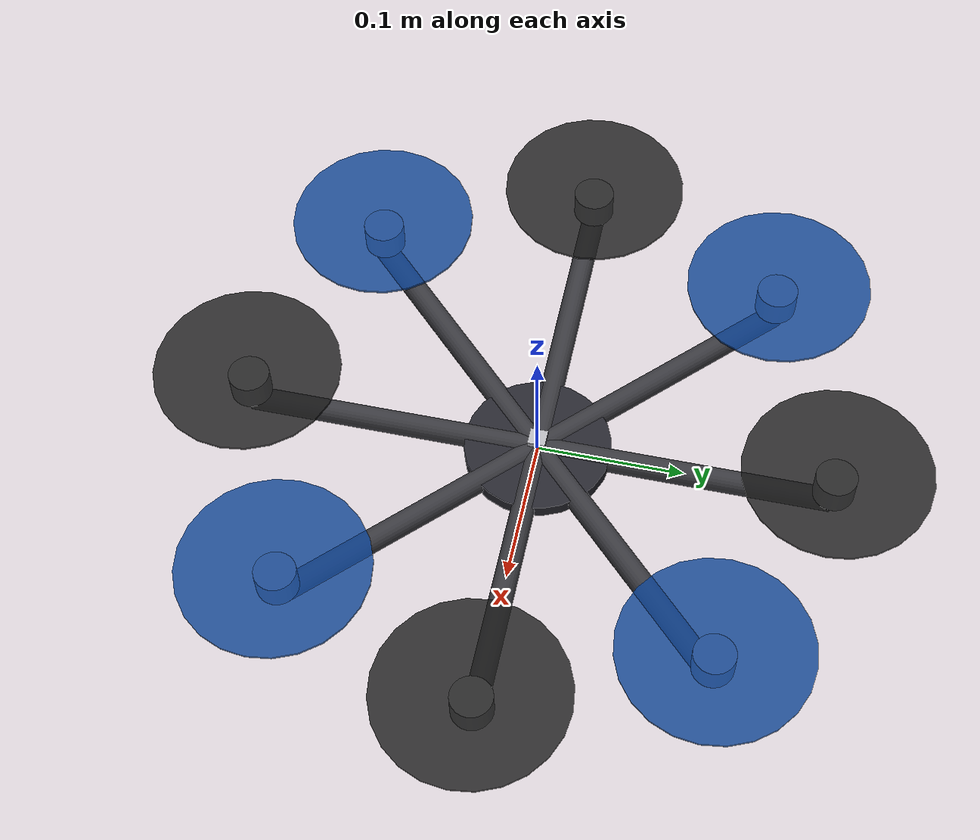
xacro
<?xml version="1.0"?>
<robot name="adaptive_8rotor_drone" xmlns:xacro="http://www.ros.org/wiki/xacro">

  <material name="mat_core"><color rgba="0.15 0.15 0.18 1.0"/></material>
  <material name="mat_arm"><color rgba="0.22 0.22 0.24 1.0"/></material>
  <material name="mat_motor"><color rgba="0.70 0.70 0.72 1.0"/></material>
  <material name="mat_rotor_ccw"><color rgba="0.10 0.10 0.10 0.85"/></material>
  <material name="mat_rotor_cw"><color rgba="0.05 0.25 0.55 0.85"/></material>

  <xacro:macro name="inertial_box" params="mass x y z">
    <inertial><origin xyz="0 0 0" rpy="0 0 0"/><mass value="${mass}"/><inertia ixx="${mass*(y*y + z*z)/12.0}" ixy="0.0" ixz="0.0" iyy="${mass*(x*x + z*z)/12.0}" iyz="0.0" izz="${mass*(x*x + y*y)/12.0}"/></inertial>
  </xacro:macro>
  <xacro:macro name="inertial_cylinder_z" params="mass radius length">
    <inertial><origin xyz="0 0 0" rpy="0 0 0"/><mass value="${mass}"/><inertia ixx="${mass*(3*radius*radius + length*length)/12.0}" ixy="0.0" ixz="0.0" iyy="${mass*(3*radius*radius + length*length)/12.0}" iyz="0.0" izz="${0.5*mass*radius*radius}"/></inertial>
  </xacro:macro>

  <link name="base_link">
    <visual><geometry><cylinder radius="0.050000" length="0.010000"/></geometry><material name="mat_core"/></visual>
    <collision><geometry><cylinder radius="0.050000" length="0.010000"/></geometry></collision>
    <xacro:inertial_cylinder_z mass="0.400000" radius="0.050000" length="0.010000"/>
  </link>

  <link name="imu_link">
    <visual><origin xyz="0 0 0.012" rpy="0 0 0"/><geometry><box size="0.012 0.012 0.004"/></geometry><material name="mat_motor"/></visual>
    <collision><origin xyz="0 0 0.012" rpy="0 0 0"/><geometry><box size="0.012 0.012 0.004"/></geometry></collision>
    <xacro:inertial_box mass="0.005" x="0.012" y="0.012" z="0.004"/>
  </link>
  <joint name="imu_joint" type="fixed"><parent link="base_link"/><child link="imu_link"/><origin xyz="0 0 0" rpy="0 0 0"/></joint>

  <!-- arm_1: spin=ccw, propsize=2.0, pitch=0.045, blades=2 -->
  <link name="arm_1_arm_link">
    <visual><origin xyz="0.100000 0 0" rpy="0 1.57079632679 0"/><geometry><cylinder radius="0.008000" length="0.200000"/></geometry><material name="mat_arm"/></visual>
    <collision><origin xyz="0.100000 0 0" rpy="0 1.57079632679 0"/><geometry><cylinder radius="0.008000" length="0.200000"/></geometry></collision>
    <xacro:inertial_cylinder_z mass="0.036000" radius="0.008000" length="0.200000"/>
  </link>
  <joint name="base_to_arm_1_arm_joint" type="revolute">
    <parent link="base_link"/>
    <child link="arm_1_arm_link"/>
    <origin xyz="0.000000 0.000000 0.000000" rpy="0.000000 0.000000 0.000000"/>
    <axis xyz="0.000000 1.000000 0.000000"/>
    <dynamics damping="0.0800" friction="0.0000"/>
    <limit lower="-0.350000" upper="0.350000" effort="8.0000" velocity="3.0000"/>
  </joint>

  <link name="arm_1_motor_link">
    <visual><geometry><cylinder radius="0.014000" length="0.020000"/></geometry><material name="mat_motor"/></visual>
    <collision><geometry><cylinder radius="0.014000" length="0.020000"/></geometry></collision>
    <xacro:inertial_cylinder_z mass="0.060000" radius="0.014000" length="0.020000"/>
  </link>
  <joint name="arm_1_arm_to_motor_joint" type="revolute">
    <parent link="arm_1_arm_link"/>
    <child link="arm_1_motor_link"/>
    <origin xyz="0.200000 0.000000 0.020000" rpy="0.000000 0.000000 0.000000"/>
    <axis xyz="1.000000 0.000000 0.000000"/>
    <dynamics damping="0.0500" friction="0.0000"/>
    <limit lower="-0.300000" upper="0.300000" effort="6.0000" velocity="3.0000"/>
  </joint>

  <link name="arm_1_rotor_link">
    <visual><origin xyz="0 0 0" rpy="0.000000 0.000000 0.000000"/><geometry><cylinder radius="0.063500" length="0.002000"/></geometry><material name="mat_rotor_ccw"/></visual>
    <collision><origin xyz="0 0 0" rpy="0.000000 0.000000 0.000000"/><geometry><cylinder radius="0.063500" length="0.002000"/></geometry></collision>
    <xacro:inertial_cylinder_z mass="0.010000" radius="0.010000" length="0.006000"/>
  </link>
  <joint name="arm_1_motor_to_rotor_joint" type="continuous">
    <parent link="arm_1_motor_link"/>
    <child link="arm_1_rotor_link"/>
    <origin xyz="0.000000 0.000000 0.016000" rpy="0.000000 0.000000 0.000000"/>
    <axis xyz="0.000000 0.000000 1.000000"/>
    <dynamics damping="0.0010" friction="0.0000"/>
    <limit effort="2.5000" velocity="400.0000"/>
  </joint>

  <!-- arm_2: spin=cw, propsize=2.0, pitch=0.045, blades=2 -->
  <link name="arm_2_arm_link">
    <visual><origin xyz="0.100000 0 0" rpy="0 1.57079632679 0"/><geometry><cylinder radius="0.008000" length="0.200000"/></geometry><material name="mat_arm"/></visual>
    <collision><origin xyz="0.100000 0 0" rpy="0 1.57079632679 0"/><geometry><cylinder radius="0.008000" length="0.200000"/></geometry></collision>
    <xacro:inertial_cylinder_z mass="0.036000" radius="0.008000" length="0.200000"/>
  </link>
  <joint name="base_to_arm_2_arm_joint" type="revolute">
    <parent link="base_link"/>
    <child link="arm_2_arm_link"/>
    <origin xyz="0.000000 0.000000 0.000000" rpy="0.000000 0.000000 0.785398"/>
    <axis xyz="0.000000 1.000000 0.000000"/>
    <dynamics damping="0.0800" friction="0.0000"/>
    <limit lower="-0.350000" upper="0.350000" effort="8.0000" velocity="3.0000"/>
  </joint>

  <link name="arm_2_motor_link">
    <visual><geometry><cylinder radius="0.014000" length="0.020000"/></geometry><material name="mat_motor"/></visual>
    <collision><geometry><cylinder radius="0.014000" length="0.020000"/></geometry></collision>
    <xacro:inertial_cylinder_z mass="0.060000" radius="0.014000" length="0.020000"/>
  </link>
  <joint name="arm_2_arm_to_motor_joint" type="revolute">
    <parent link="arm_2_arm_link"/>
    <child link="arm_2_motor_link"/>
    <origin xyz="0.200000 0.000000 0.020000" rpy="0.000000 0.000000 0.000000"/>
    <axis xyz="1.000000 0.000000 0.000000"/>
    <dynamics damping="0.0500" friction="0.0000"/>
    <limit lower="-0.300000" upper="0.300000" effort="6.0000" velocity="3.0000"/>
  </joint>

  <link name="arm_2_rotor_link">
    <visual><origin xyz="0 0 0" rpy="0.000000 0.000000 0.000000"/><geometry><cylinder radius="0.063500" length="0.002000"/></geometry><material name="mat_rotor_cw"/></visual>
    <collision><origin xyz="0 0 0" rpy="0.000000 0.000000 0.000000"/><geometry><cylinder radius="0.063500" length="0.002000"/></geometry></collision>
    <xacro:inertial_cylinder_z mass="0.010000" radius="0.010000" length="0.006000"/>
  </link>
  <joint name="arm_2_motor_to_rotor_joint" type="continuous">
    <parent link="arm_2_motor_link"/>
    <child link="arm_2_rotor_link"/>
    <origin xyz="0.000000 0.000000 0.016000" rpy="0.000000 0.000000 0.000000"/>
    <axis xyz="0.000000 0.000000 1.000000"/>
    <dynamics damping="0.0010" friction="0.0000"/>
    <limit effort="2.5000" velocity="400.0000"/>
  </joint>

  <!-- arm_3: spin=ccw, propsize=2.0, pitch=0.045, blades=2 -->
  <link name="arm_3_arm_link">
    <visual><origin xyz="0.100000 0 0" rpy="0 1.57079632679 0"/><geometry><cylinder radius="0.008000" length="0.200000"/></geometry><material name="mat_arm"/></visual>
    <collision><origin xyz="0.100000 0 0" rpy="0 1.57079632679 0"/><geometry><cylinder radius="0.008000" length="0.200000"/></geometry></collision>
    <xacro:inertial_cylinder_z mass="0.036000" radius="0.008000" length="0.200000"/>
  </link>
  <joint name="base_to_arm_3_arm_joint" type="revolute">
    <parent link="base_link"/>
    <child link="arm_3_arm_link"/>
    <origin xyz="0.000000 0.000000 0.000000" rpy="0.000000 0.000000 1.570796"/>
    <axis xyz="0.000000 1.000000 0.000000"/>
    <dynamics damping="0.0800" friction="0.0000"/>
    <limit lower="-0.350000" upper="0.350000" effort="8.0000" velocity="3.0000"/>
  </joint>

  <link name="arm_3_motor_link">
    <visual><geometry><cylinder radius="0.014000" length="0.020000"/></geometry><material name="mat_motor"/></visual>
    <collision><geometry><cylinder radius="0.014000" length="0.020000"/></geometry></collision>
    <xacro:inertial_cylinder_z mass="0.060000" radius="0.014000" length="0.020000"/>
  </link>
  <joint name="arm_3_arm_to_motor_joint" type="revolute">
    <parent link="arm_3_arm_link"/>
    <child link="arm_3_motor_link"/>
    <origin xyz="0.200000 0.000000 0.020000" rpy="0.000000 0.000000 0.000000"/>
    <axis xyz="1.000000 0.000000 0.000000"/>
    <dynamics damping="0.0500" friction="0.0000"/>
    <limit lower="-0.300000" upper="0.300000" effort="6.0000" velocity="3.0000"/>
  </joint>

  <link name="arm_3_rotor_link">
    <visual><origin xyz="0 0 0" rpy="0.000000 0.000000 0.000000"/><geometry><cylinder radius="0.063500" length="0.002000"/></geometry><material name="mat_rotor_ccw"/></visual>
    <collision><origin xyz="0 0 0" rpy="0.000000 0.000000 0.000000"/><geometry><cylinder radius="0.063500" length="0.002000"/></geometry></collision>
    <xacro:inertial_cylinder_z mass="0.010000" radius="0.010000" length="0.006000"/>
  </link>
  <joint name="arm_3_motor_to_rotor_joint" type="continuous">
    <parent link="arm_3_motor_link"/>
    <child link="arm_3_rotor_link"/>
    <origin xyz="0.000000 0.000000 0.016000" rpy="0.000000 0.000000 0.000000"/>
    <axis xyz="0.000000 0.000000 1.000000"/>
    <dynamics damping="0.0010" friction="0.0000"/>
    <limit effort="2.5000" velocity="400.0000"/>
  </joint>

  <!-- arm_4: spin=cw, propsize=2.0, pitch=0.045, blades=2 -->
  <link name="arm_4_arm_link">
    <visual><origin xyz="0.100000 0 0" rpy="0 1.57079632679 0"/><geometry><cylinder radius="0.008000" length="0.200000"/></geometry><material name="mat_arm"/></visual>
    <collision><origin xyz="0.100000 0 0" rpy="0 1.57079632679 0"/><geometry><cylinder radius="0.008000" length="0.200000"/></geometry></collision>
    <xacro:inertial_cylinder_z mass="0.036000" radius="0.008000" length="0.200000"/>
  </link>
  <joint name="base_to_arm_4_arm_joint" type="revolute">
    <parent link="base_link"/>
    <child link="arm_4_arm_link"/>
    <origin xyz="0.000000 0.000000 0.000000" rpy="0.000000 0.000000 2.356194"/>
    <axis xyz="0.000000 1.000000 0.000000"/>
    <dynamics damping="0.0800" friction="0.0000"/>
    <limit lower="-0.350000" upper="0.350000" effort="8.0000" velocity="3.0000"/>
  </joint>

  <link name="arm_4_motor_link">
    <visual><geometry><cylinder radius="0.014000" length="0.020000"/></geometry><material name="mat_motor"/></visual>
    <collision><geometry><cylinder radius="0.014000" length="0.020000"/></geometry></collision>
    <xacro:inertial_cylinder_z mass="0.060000" radius="0.014000" length="0.020000"/>
  </link>
  <joint name="arm_4_arm_to_motor_joint" type="revolute">
    <parent link="arm_4_arm_link"/>
    <child link="arm_4_motor_link"/>
    <origin xyz="0.200000 0.000000 0.020000" rpy="0.000000 0.000000 0.000000"/>
    <axis xyz="1.000000 0.000000 0.000000"/>
    <dynamics damping="0.0500" friction="0.0000"/>
    <limit lower="-0.300000" upper="0.300000" effort="6.0000" velocity="3.0000"/>
  </joint>

  <link name="arm_4_rotor_link">
    <visual><origin xyz="0 0 0" rpy="0.000000 0.000000 0.000000"/><geometry><cylinder radius="0.063500" length="0.002000"/></geometry><material name="mat_rotor_cw"/></visual>
    <collision><origin xyz="0 0 0" rpy="0.000000 0.000000 0.000000"/><geometry><cylinder radius="0.063500" length="0.002000"/></geometry></collision>
    <xacro:inertial_cylinder_z mass="0.010000" radius="0.010000" length="0.006000"/>
  </link>
  <joint name="arm_4_motor_to_rotor_joint" type="continuous">
    <parent link="arm_4_motor_link"/>
    <child link="arm_4_rotor_link"/>
    <origin xyz="0.000000 0.000000 0.016000" rpy="0.000000 0.000000 0.000000"/>
    <axis xyz="0.000000 0.000000 1.000000"/>
    <dynamics damping="0.0010" friction="0.0000"/>
    <limit effort="2.5000" velocity="400.0000"/>
  </joint>

  <!-- arm_5: spin=ccw, propsize=2.0, pitch=0.045, blades=2 -->
  <link name="arm_5_arm_link">
    <visual><origin xyz="0.100000 0 0" rpy="0 1.57079632679 0"/><geometry><cylinder radius="0.008000" length="0.200000"/></geometry><material name="mat_arm"/></visual>
    <collision><origin xyz="0.100000 0 0" rpy="0 1.57079632679 0"/><geometry><cylinder radius="0.008000" length="0.200000"/></geometry></collision>
    <xacro:inertial_cylinder_z mass="0.036000" radius="0.008000" length="0.200000"/>
  </link>
  <joint name="base_to_arm_5_arm_joint" type="revolute">
    <parent link="base_link"/>
    <child link="arm_5_arm_link"/>
    <origin xyz="0.000000 0.000000 0.000000" rpy="0.000000 0.000000 3.141593"/>
    <axis xyz="0.000000 1.000000 0.000000"/>
    <dynamics damping="0.0800" friction="0.0000"/>
    <limit lower="-0.350000" upper="0.350000" effort="8.0000" velocity="3.0000"/>
  </joint>

  <link name="arm_5_motor_link">
    <visual><geometry><cylinder radius="0.014000" length="0.020000"/></geometry><material name="mat_motor"/></visual>
    <collision><geometry><cylinder radius="0.014000" length="0.020000"/></geometry></collision>
    <xacro:inertial_cylinder_z mass="0.060000" radius="0.014000" length="0.020000"/>
  </link>
  <joint name="arm_5_arm_to_motor_joint" type="revolute">
    <parent link="arm_5_arm_link"/>
    <child link="arm_5_motor_link"/>
    <origin xyz="0.200000 0.000000 0.020000" rpy="0.000000 0.000000 0.000000"/>
    <axis xyz="1.000000 0.000000 0.000000"/>
    <dynamics damping="0.0500" friction="0.0000"/>
    <limit lower="-0.300000" upper="0.300000" effort="6.0000" velocity="3.0000"/>
  </joint>

  <link name="arm_5_rotor_link">
    <visual><origin xyz="0 0 0" rpy="0.000000 0.000000 0.000000"/><geometry><cylinder radius="0.063500" length="0.002000"/></geometry><material name="mat_rotor_ccw"/></visual>
    <collision><origin xyz="0 0 0" rpy="0.000000 0.000000 0.000000"/><geometry><cylinder radius="0.063500" length="0.002000"/></geometry></collision>
    <xacro:inertial_cylinder_z mass="0.010000" radius="0.010000" length="0.006000"/>
  </link>
  <joint name="arm_5_motor_to_rotor_joint" type="continuous">
    <parent link="arm_5_motor_link"/>
    <child link="arm_5_rotor_link"/>
    <origin xyz="0.000000 0.000000 0.016000" rpy="0.000000 0.000000 0.000000"/>
    <axis xyz="0.000000 0.000000 1.000000"/>
    <dynamics damping="0.0010" friction="0.0000"/>
    <limit effort="2.5000" velocity="400.0000"/>
  </joint>

  <!-- arm_6: spin=cw, propsize=2.0, pitch=0.045, blades=2 -->
  <link name="arm_6_arm_link">
    <visual><origin xyz="0.100000 0 0" rpy="0 1.57079632679 0"/><geometry><cylinder radius="0.008000" length="0.200000"/></geometry><material name="mat_arm"/></visual>
    <collision><origin xyz="0.100000 0 0" rpy="0 1.57079632679 0"/><geometry><cylinder radius="0.008000" length="0.200000"/></geometry></collision>
    <xacro:inertial_cylinder_z mass="0.036000" radius="0.008000" length="0.200000"/>
  </link>
  <joint name="base_to_arm_6_arm_joint" type="revolute">
    <parent link="base_link"/>
    <child link="arm_6_arm_link"/>
    <origin xyz="0.000000 0.000000 0.000000" rpy="0.000000 0.000000 3.926991"/>
    <axis xyz="0.000000 1.000000 0.000000"/>
    <dynamics damping="0.0800" friction="0.0000"/>
    <limit lower="-0.350000" upper="0.350000" effort="8.0000" velocity="3.0000"/>
  </joint>

  <link name="arm_6_motor_link">
    <visual><geometry><cylinder radius="0.014000" length="0.020000"/></geometry><material name="mat_motor"/></visual>
    <collision><geometry><cylinder radius="0.014000" length="0.020000"/></geometry></collision>
    <xacro:inertial_cylinder_z mass="0.060000" radius="0.014000" length="0.020000"/>
  </link>
  <joint name="arm_6_arm_to_motor_joint" type="revolute">
    <parent link="arm_6_arm_link"/>
    <child link="arm_6_motor_link"/>
    <origin xyz="0.200000 0.000000 0.020000" rpy="0.000000 0.000000 0.000000"/>
    <axis xyz="1.000000 0.000000 0.000000"/>
    <dynamics damping="0.0500" friction="0.0000"/>
    <limit lower="-0.300000" upper="0.300000" effort="6.0000" velocity="3.0000"/>
  </joint>

  <link name="arm_6_rotor_link">
    <visual><origin xyz="0 0 0" rpy="0.000000 0.000000 0.000000"/><geometry><cylinder radius="0.063500" length="0.002000"/></geometry><material name="mat_rotor_cw"/></visual>
    <collision><origin xyz="0 0 0" rpy="0.000000 0.000000 0.000000"/><geometry><cylinder radius="0.063500" length="0.002000"/></geometry></collision>
    <xacro:inertial_cylinder_z mass="0.010000" radius="0.010000" length="0.006000"/>
  </link>
  <joint name="arm_6_motor_to_rotor_joint" type="continuous">
    <parent link="arm_6_motor_link"/>
    <child link="arm_6_rotor_link"/>
    <origin xyz="0.000000 0.000000 0.016000" rpy="0.000000 0.000000 0.000000"/>
    <axis xyz="0.000000 0.000000 1.000000"/>
    <dynamics damping="0.0010" friction="0.0000"/>
    <limit effort="2.5000" velocity="400.0000"/>
  </joint>

  <!-- arm_7: spin=ccw, propsize=2.0, pitch=0.045, blades=2 -->
  <link name="arm_7_arm_link">
    <visual><origin xyz="0.100000 0 0" rpy="0 1.57079632679 0"/><geometry><cylinder radius="0.008000" length="0.200000"/></geometry><material name="mat_arm"/></visual>
    <collision><origin xyz="0.100000 0 0" rpy="0 1.57079632679 0"/><geometry><cylinder radius="0.008000" length="0.200000"/></geometry></collision>
    <xacro:inertial_cylinder_z mass="0.036000" radius="0.008000" length="0.200000"/>
  </link>
  <joint name="base_to_arm_7_arm_joint" type="revolute">
    <parent link="base_link"/>
    <child link="arm_7_arm_link"/>
    <origin xyz="0.000000 0.000000 0.000000" rpy="0.000000 0.000000 4.712389"/>
    <axis xyz="0.000000 1.000000 0.000000"/>
    <dynamics damping="0.0800" friction="0.0000"/>
    <limit lower="-0.350000" upper="0.350000" effort="8.0000" velocity="3.0000"/>
  </joint>

  <link name="arm_7_motor_link">
    <visual><geometry><cylinder radius="0.014000" length="0.020000"/></geometry><material name="mat_motor"/></visual>
    <collision><geometry><cylinder radius="0.014000" length="0.020000"/></geometry></collision>
    <xacro:inertial_cylinder_z mass="0.060000" radius="0.014000" length="0.020000"/>
  </link>
  <joint name="arm_7_arm_to_motor_joint" type="revolute">
    <parent link="arm_7_arm_link"/>
    <child link="arm_7_motor_link"/>
    <origin xyz="0.200000 0.000000 0.020000" rpy="0.000000 0.000000 0.000000"/>
    <axis xyz="1.000000 0.000000 0.000000"/>
    <dynamics damping="0.0500" friction="0.0000"/>
    <limit lower="-0.300000" upper="0.300000" effort="6.0000" velocity="3.0000"/>
  </joint>

  <link name="arm_7_rotor_link">
    <visual><origin xyz="0 0 0" rpy="0.000000 0.000000 0.000000"/><geometry><cylinder radius="0.063500" length="0.002000"/></geometry><material name="mat_rotor_ccw"/></visual>
    <collision><origin xyz="0 0 0" rpy="0.000000 0.000000 0.000000"/><geometry><cylinder radius="0.063500" length="0.002000"/></geometry></collision>
    <xacro:inertial_cylinder_z mass="0.010000" radius="0.010000" length="0.006000"/>
  </link>
  <joint name="arm_7_motor_to_rotor_joint" type="continuous">
    <parent link="arm_7_motor_link"/>
    <child link="arm_7_rotor_link"/>
    <origin xyz="0.000000 0.000000 0.016000" rpy="0.000000 0.000000 0.000000"/>
    <axis xyz="0.000000 0.000000 1.000000"/>
    <dynamics damping="0.0010" friction="0.0000"/>
    <limit effort="2.5000" velocity="400.0000"/>
  </joint>

  <!-- arm_8: spin=cw, propsize=2.0, pitch=0.045, blades=2 -->
  <link name="arm_8_arm_link">
    <visual><origin xyz="0.100000 0 0" rpy="0 1.57079632679 0"/><geometry><cylinder radius="0.008000" length="0.200000"/></geometry><material name="mat_arm"/></visual>
    <collision><origin xyz="0.100000 0 0" rpy="0 1.57079632679 0"/><geometry><cylinder radius="0.008000" length="0.200000"/></geometry></collision>
    <xacro:inertial_cylinder_z mass="0.036000" radius="0.008000" length="0.200000"/>
  </link>
  <joint name="base_to_arm_8_arm_joint" type="revolute">
    <parent link="base_link"/>
    <child link="arm_8_arm_link"/>
    <origin xyz="0.000000 0.000000 0.000000" rpy="0.000000 0.000000 5.497787"/>
    <axis xyz="0.000000 1.000000 0.000000"/>
    <dynamics damping="0.0800" friction="0.0000"/>
    <limit lower="-0.350000" upper="0.350000" effort="8.0000" velocity="3.0000"/>
  </joint>

  <link name="arm_8_motor_link">
    <visual><geometry><cylinder radius="0.014000" length="0.020000"/></geometry><material name="mat_motor"/></visual>
    <collision><geometry><cylinder radius="0.014000" length="0.020000"/></geometry></collision>
    <xacro:inertial_cylinder_z mass="0.060000" radius="0.014000" length="0.020000"/>
  </link>
  <joint name="arm_8_arm_to_motor_joint" type="revolute">
    <parent link="arm_8_arm_link"/>
    <child link="arm_8_motor_link"/>
    <origin xyz="0.200000 0.000000 0.020000" rpy="0.000000 0.000000 0.000000"/>
    <axis xyz="1.000000 0.000000 0.000000"/>
    <dynamics damping="0.0500" friction="0.0000"/>
    <limit lower="-0.300000" upper="0.300000" effort="6.0000" velocity="3.0000"/>
  </joint>

  <link name="arm_8_rotor_link">
    <visual><origin xyz="0 0 0" rpy="0.000000 0.000000 0.000000"/><geometry><cylinder radius="0.063500" length="0.002000"/></geometry><material name="mat_rotor_cw"/></visual>
    <collision><origin xyz="0 0 0" rpy="0.000000 0.000000 0.000000"/><geometry><cylinder radius="0.063500" length="0.002000"/></geometry></collision>
    <xacro:inertial_cylinder_z mass="0.010000" radius="0.010000" length="0.006000"/>
  </link>
  <joint name="arm_8_motor_to_rotor_joint" type="continuous">
    <parent link="arm_8_motor_link"/>
    <child link="arm_8_rotor_link"/>
    <origin xyz="0.000000 0.000000 0.016000" rpy="0.000000 0.000000 0.000000"/>
    <axis xyz="0.000000 0.000000 1.000000"/>
    <dynamics damping="0.0010" friction="0.0000"/>
    <limit effort="2.5000" velocity="400.0000"/>
  </joint>

</robot>
